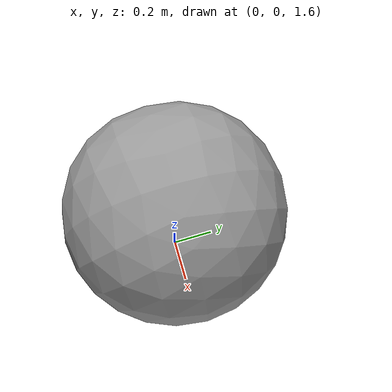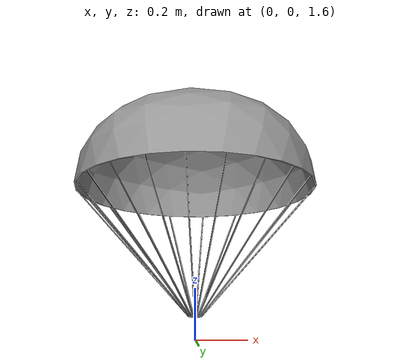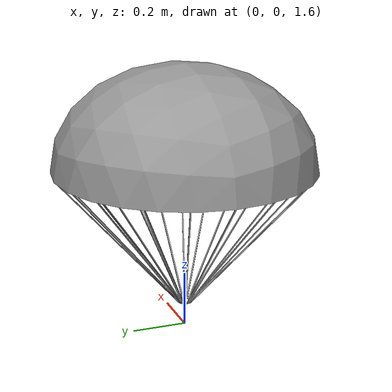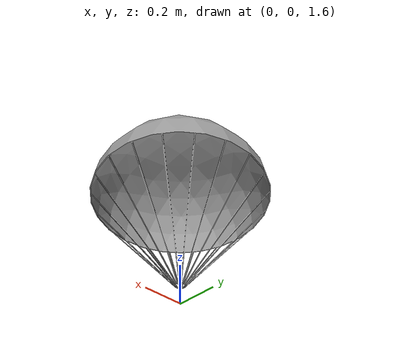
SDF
<?xml version="1.0" ?>
<sdf version="1.5">
  <model name="deployed_parachute">
    <static>true</static>
    <link name="link">
      <pose>0 0 1.4 0 0 0</pose>
      <visual name="visual">
        <cast_shadows>false</cast_shadows>
        <geometry>
          <mesh>
            <uri>model://deployed_parachute/meshes/deployed_parachute.dae</uri>
          </mesh>
        </geometry>
        <material>
          <script>
            <uri>model://deployed_parachute/materials/scripts</uri>
            <uri>model://deployed_parachute/materials/textures</uri>
            <name>vrc/grey_wall</name>
          </script>
        </material>
      </visual>
    </link>
  </model>
</sdf>
